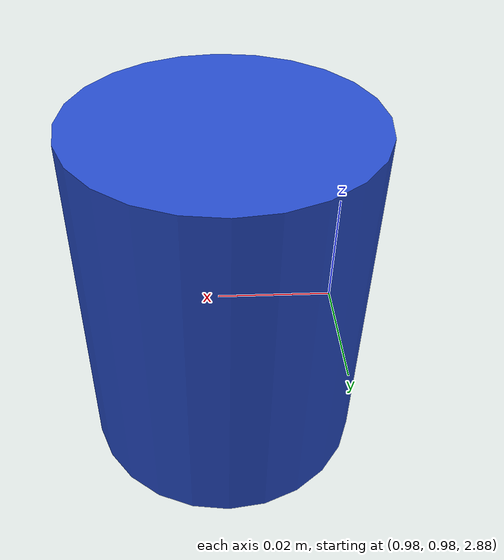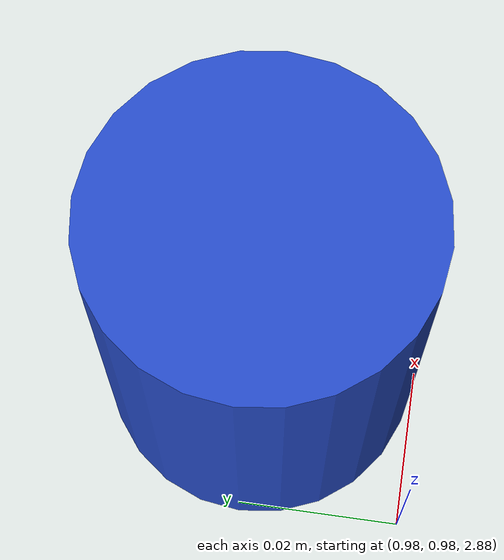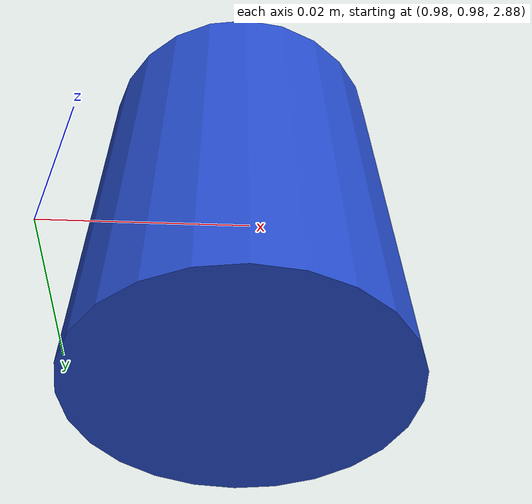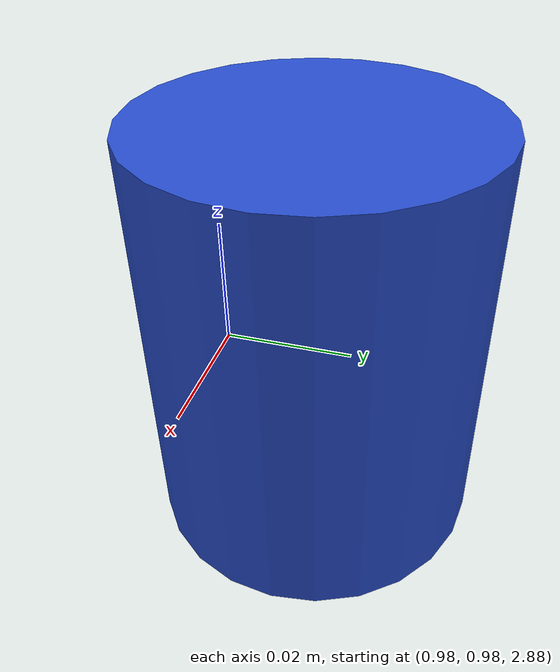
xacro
<?xml version="1.0"?>

<!-- This is a ceiling fixed camera -->

<robot name="smocap" xmlns:xacro="http://www.ros.org/wiki/xacro">

  <xacro:property name="PI" value="3.1415926535897931" />
  <xacro:property name="camera_x" value="1." />
  <xacro:property name="camera_y" value="1." />
  <xacro:property name="camera_z" value="2.9" />
  <xacro:property name="camera_r" value="0.01" />

  <gazebo>
    <static>true</static>
  </gazebo>

  <link name="camera_link">
    <collision>
      <origin xyz="0 0 0" rpy="0 0 0"/>
      <geometry>
	<box size="${camera_r} ${camera_r} ${camera_r}"/>
      </geometry>
    </collision>

    <visual>
      <origin xyz="0 0 0" rpy="0 0 0"/>
      <geometry>
	<box size="${camera_r} ${camera_r} ${camera_r}"/>
      </geometry>
      <material name="red"/>
      <cast_shadows>false</cast_shadows>
    </visual>

    <inertial>
      <mass value="1e-5" />
      <origin xyz="0 0 0" rpy="0 0 0"/>
      <inertia ixx="1e-6" ixy="0" ixz="0" iyy="1e-6" iyz="0" izz="1e-6" />
      </inertial>
  </link>

  <link name="world" />

  <joint name="camera_joint"  type="fixed">
    <origin xyz="${camera_x} ${camera_y} ${camera_z}" rpy="0 ${PI/2} 0" />
    <parent link="world"/>
    <child link="camera_link"/>
  </joint>

  <link name="camera_optical_frame">
    <inertial>
      <mass value="0.01"/>
      <origin rpy="0 0 0" xyz="0 0 0"/>
      <inertia ixx="0.001" ixy="0.0" ixz="0.0" iyy="0.001" iyz="0.0" izz="0.001"/>
    </inertial>
    <visual>
      <!-- bogus values for visual aesthetics -->
      <origin rpy="0 0 ${PI/2}" xyz="0 0 0"/>
      <geometry>
        <cylinder length="0.05" radius="0.02"/>
      </geometry>
      <material name="Blue"/>
    </visual>
    <collision>
      <origin rpy="0 0 0" xyz="0 0 0"/>
      <geometry>
        <box size="0.01 0.01 0.01"/>
      </geometry>
    </collision>
  </link>

  <joint name="camera_optical_frame_joint" type="fixed">
    <origin rpy="${-PI/2} 0.0 ${-PI/2}" xyz="0.0 0.0 0.0"/>
    <parent link="camera_link"/>
    <child link="camera_optical_frame"/>
  </joint>

  <!-- camera -->
  <xacro:property name="use_thermal_plugin" value="false" />

  <xacro:unless value="${use_thermal_plugin}">
  <gazebo reference="camera_link">
    <sensor type="camera" name="camera">
      <update_rate>30.0</update_rate>
      <camera name="head">
        <horizontal_fov>1.3962634</horizontal_fov>
        <image>
          <width>1600</width>
          <height>1200</height>
          <format>R8G8B8</format>
        </image>
        <clip>
          <near>0.02</near>
          <far>10</far>
        </clip>
        <noise>
          <type>gaussian</type>
          <!-- Noise is sampled independently per pixel on each frame.
               That pixel's noise value is added to each of its color
               channels, which at that point lie in the range [0,1]. -->
          <mean>0.0</mean>
          <stddev>0.007</stddev>
        </noise>
      </camera>
      <plugin name="camera_controller" filename="libgazebo_ros_camera.so">
        <alwaysOn>true</alwaysOn>
        <updateRate>0.0</updateRate>
        <cameraName>smocap/camera</cameraName>
        <imageTopicName>image_raw</imageTopicName>
        <cameraInfoTopicName>camera_info</cameraInfoTopicName>
        <frameName>camera_link</frameName>
        <hackBaseline>0.07</hackBaseline>
        <distortionK1>0.0</distortionK1>
        <distortionK2>0.0</distortionK2>
        <distortionK3>0.0</distortionK3>
        <distortionT1>0.0</distortionT1>
        <distortionT2>0.0</distortionT2>
      </plugin>
    </sensor>
  </gazebo>
  </xacro:unless>

  <xacro:if value="${use_thermal_plugin}">
    <gazebo reference="camera_optical_frame">
      <sensor type="camera" name="thermal_camera_sensor">
	<update_rate>30</update_rate>
	<camera name="head">
	  <horizontal_fov>1.3962634</horizontal_fov>
	  <image>
            <width>800</width>
            <height>800</height>
            <format>R8G8B8</format>
          </image>
          <clip>
            <near>0.02</near>
            <far>20</far>
          </clip>
	</camera>
	<plugin name="thermal_camera_controller" filename="libgazebo_ros_thermal_depth_camera.so">
          <alwaysOn>true</alwaysOn>
          <updateRate>0.</updateRate>
          <imageTopicName>/smocap/image_raw</imageTopicName>
          <cameraInfoTopicName>/smocap/camera_info</cameraInfoTopicName>
          <frameName>camera_link</frameName>
	</plugin>
      </sensor>
    </gazebo>
  </xacro:if>

</robot>
